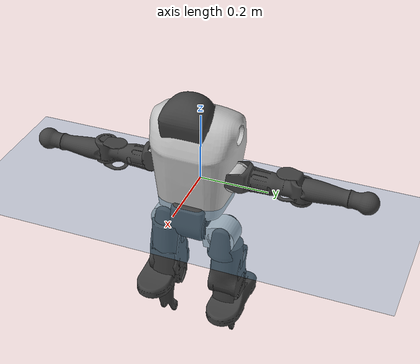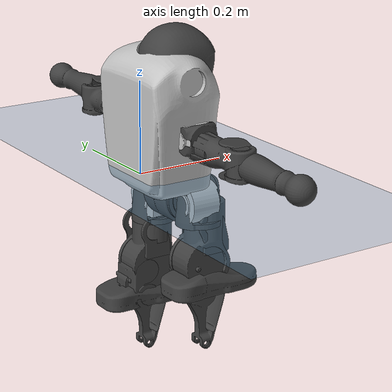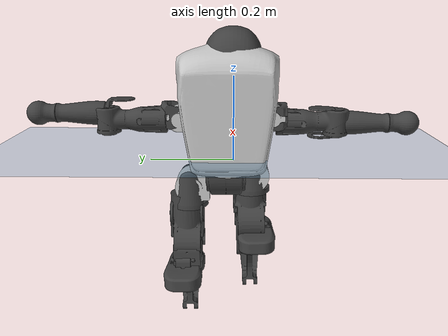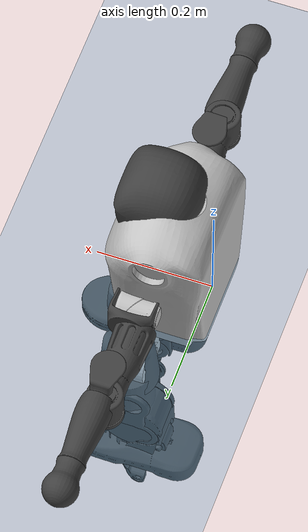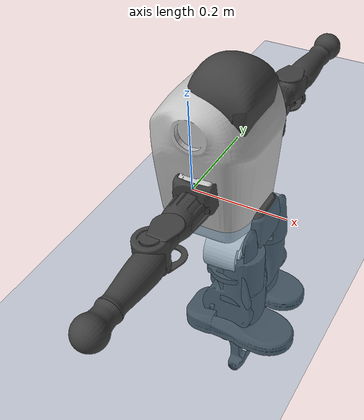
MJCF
<mujoco model="T1">
  <compiler angle="radian" assetdir="assets" balanceinertia="true" inertiafromgeom="false"/>

  <option timestep="0.005" density="1.2" viscosity="2e-05"/>

  <size nkey="1"/>

  <visual>
    <quality shadowsize="8192"/>
    <map shadowclip="0.5"/>
  </visual>

  <default>
    <default class="/">
      <joint armature="0.01" damping="0.01" frictionloss="0.1"/>
      <geom contype="0" conaffinity="0" group="1" solref="-1000 -80"/>
      <site size="0.01 0.005 0.005" group="5"/>
      <general forcelimited="true" biastype="affine" gainprm="25" biasprm="0 -25 -0.6"/>
      <default class="t1">
        <geom rgba="0.25 0.25 0.25 1"/>
        <default class="visual">
          <geom type="mesh" group="2"/>
        </default>
        <default class="collision">
          <geom group="3"/>
        </default>
        <default class="foot">
          <geom size="0.1115 0.05 0.015" type="box" condim="6" group="4" priority="1" solimp="0.015 1 0.015"/>
        </default>
        <default class="reward_collision_sphere">
          <geom group="5" rgba="1 0 0 1"/>
        </default>
      </default>
    </default>
  </default>

  <asset>
    <texture type="skybox" colorspace="auto" name="//unnamed_texture_0" builtin="gradient" rgb1="0.95 0.95 0.95" rgb2="0.95 0.95 0.95" width="100" height="600"/>
    <texture type="2d" colorspace="auto" name="texplane" builtin="checker" rgb1="0.345 0.575 0.748" rgb2="0.345 0.575 0.748" markrgb="1 1 1" width="512" height="512"/>
    <material name="MatPlane" class="/" texture="texplane" texuniform="true" texrepeat="2 2" specular="0.9"/>
    <mesh name="Trunk" class="/" file="Trunk.stl"/>
    <mesh name="H1" class="/" file="H1.stl"/>
    <mesh name="H2" class="/" file="H2.stl"/>
    <mesh name="AL1" class="/" file="AL1.stl"/>
    <mesh name="AL2" class="/" file="AL2.stl"/>
    <mesh name="AL3" class="/" file="AL3.stl"/>
    <mesh name="left_hand_link" class="/" file="left_hand_link.stl"/>
    <mesh name="AR1" class="/" file="AR1.stl"/>
    <mesh name="AR2" class="/" file="AR2.stl"/>
    <mesh name="AR3" class="/" file="AR3.stl"/>
    <mesh name="right_hand_link" class="/" file="right_hand_link.stl"/>
    <mesh name="Waist" class="/" file="Waist.stl"/>
    <mesh name="Hip_Pitch_Left" class="/" file="Hip_Pitch_Left.stl"/>
    <mesh name="Hip_Roll_Left" class="/" file="Hip_Roll_Left.stl"/>
    <mesh name="Hip_Yaw_Left" class="/" file="Hip_Yaw_Left.stl"/>
    <mesh name="Shank_Left" class="/" file="Shank_Left.stl"/>
    <mesh name="Ankle_Cross_Left" class="/" file="Ankle_Cross_Left.stl"/>
    <mesh name="left_foot_link" class="/" file="left_foot_link.stl"/>
    <mesh name="Hip_Pitch_Right" class="/" file="Hip_Pitch_Right.stl"/>
    <mesh name="Hip_Roll_Right" class="/" file="Hip_Roll_Right.stl"/>
    <mesh name="Hip_Yaw_Right" class="/" file="Hip_Yaw_Right.stl"/>
    <mesh name="Shank_Right" class="/" file="Shank_Right.stl"/>
    <mesh name="Ankle_Cross_Right" class="/" file="Ankle_Cross_Right.stl"/>
    <mesh name="right_foot_link" class="/" file="right_foot_link.stl"/>
  </asset>

  <worldbody>
    <geom name="floor" class="/" size="100 100 0.125" type="plane" group="0" material="MatPlane"/>
    <light name="toplight_shadow" class="/" pos="0 0 5" dir="0.0990148 0.0990148 -0.990148" type="directional" ambient="0.04 0.04 0.04" diffuse="0.55 0.55 0.55" specular="0.12 0.12 0.12"/>
    <light name="toplight_fill" class="/" pos="0 0 5" dir="0.0990148 0.0990148 -0.990148" type="directional" castshadow="false" ambient="0.04 0.04 0.04" diffuse="0.3 0.3 0.3" specular="0.08 0.08 0.08"/>
    <body name="trunk" childclass="t1" pos="0.0066726 0.0126322 -0.0109261" quat="0.999979 -0.00508735 -0.00379876 -0.0015449">
      <inertial pos="0.0687821 -0.00572269 0.0383232" quat="0.999923 0.00131801 -0.0123452 -0.000391099" mass="5.93601" diaginertia="0.22358 0.0146079 0.000518339"/>
      <joint name="//unnamed_joint_0" type="free" armature="0" damping="0" frictionloss="0"/>
      <geom name="//unnamed_geom_1" class="visual" rgba="0.76 0.76 0.76 1" mesh="Trunk"/>
      <geom name="//unnamed_geom_2" class="collision" size="0.0605935 0.0807914 0.121187" pos="0.0761278 0 0.0510357" type="box"/>
      <geom name="//unnamed_geom_3" class="reward_collision_sphere" size="0.0929101" pos="0.0761278 0 0.0425298"/>
      <geom name="//unnamed_geom_4" class="reward_collision_sphere" size="0.0121187" pos="0.0761278 0.06202 0"/>
      <geom name="//unnamed_geom_5" class="reward_collision_sphere" size="0.0121187" pos="0.0761278 -0.06202 0"/>
      <geom name="//unnamed_geom_6" class="reward_collision_sphere" size="0.0121187" pos="0.0761278 0.0780722 0.0765536"/>
      <geom name="//unnamed_geom_7" class="reward_collision_sphere" size="0.0121187" pos="0.0761278 -0.0780722 0.0765536"/>
      <site name="imu" pos="-0.054639 0.025455 -0.0242221" size="0.00807914"/>
      <camera name="track" pos="0 -1.45929 0" quat="0.707107 0.707107 0 0" mode="trackcom"/>
      <camera name="ego_camera" pos="0.154793 0 0.178625" quat="-0.5 -0.5 0.5 0.5"/>
      <body name="H1" pos="0.0662218 -0.0132064 0.114131" quat="1 -0.000124877 4.59057e-05 6.28633e-05">
        <inertial pos="0.0108973 -0.00803006 0.013388" quat="0.786447 0.0536434 0.0194447 0.615017" mass="0.270428" diaginertia="0.000850294 4.47643e-05 2.3409e-06"/>
        <joint name="AAHead_yaw" pos="0 0 0" axis="0.0194606 0.000893847 0.99981" stiffness="0.00191788" range="-1.42672 1.80118" armature="0.0132513" damping="0.0200922" frictionloss="0.0170957"/>
        <geom name="//unnamed_geom_8" class="visual" mesh="H1"/>
        <body name="H2" pos="0.00144728 0.000576959 0.016829" quat="1 -0.000121804 -0.000198176 0.000276368">
          <inertial pos="0.00537124 0.000541399 0.0410465" quat="0.990264 0.111589 -0.0408288 -0.0725182" mass="0.395033" diaginertia="0.00850444 0.000421188 2.29096e-05"/>
          <joint name="Head_pitch" pos="0 0 0" axis="-0.00132436 -0.99989 0.0147469" range="-1.19293 0.313357" armature="0.0143762" damping="0.000795648" frictionloss="0.100566"/>
          <geom name="//unnamed_geom_9" class="visual" mesh="H2"/>
          <geom name="//unnamed_geom_10" class="collision" size="0.0646331" pos="0.012688 0 0.0467828"/>
          <geom name="//unnamed_geom_11" class="reward_collision_sphere" size="0.0727122" pos="0.0253759 0 0.0425298"/>
        </body>
      </body>
      <body name="AL1" pos="0.0760353 0.0742301 0.097598" quat="1 0.000185416 0.000480909 0.000212938">
        <inertial pos="0.00755317 0.0317615 -0.00455267" quat="0.481968 0.442667 -0.542134 0.527109" mass="0.293684" diaginertia="0.0045175 0.000241745 3.46117e-06"/>
        <joint name="Left_Shoulder_Pitch" pos="0 0 0" axis="0.0247785 0.998985 0.0376235" stiffness="0.00292423" range="-3.31978 1.08047" armature="0.00793251" damping="0.0068249" frictionloss="0.0934402"/>
        <geom name="//unnamed_geom_12" class="visual" rgba="0.76 0.76 0.76 1" mesh="AL1"/>
        <body name="AL2" pos="0.00134408 0.0345363 0.007619" quat="1 5.4982e-05 -1.86606e-05 -0.000143062">
          <inertial pos="0.0052643 0.0364468 0.00121432" quat="0.48861 0.511411 -0.487693 0.511736" mass="0.0892048" diaginertia="0.00139658 7.21849e-05 2.71468e-06"/>
          <joint name="Left_Shoulder_Roll" pos="0 0 0" axis="-0.999883 -0.0133784 -0.00744999" stiffness="0.0128058" range="-1.42744 1.55553" armature="0.00765286" damping="0.0142528" frictionloss="0.0903365"/>
          <geom name="//unnamed_geom_13" class="visual" mesh="AL2"/>
          <body name="AL3" pos="-0.0119921 0.0442369 -0.0081677" quat="0.999985 -0.00427315 0.00349954 -0.00061961">
            <inertial pos="0.0143797 0.0609224 -0.00129596" quat="0.696282 0.717721 -0.00454805 0.00687147" mass="0.460263" diaginertia="0.0375499 0.00305863 8.36419e-06"/>
            <joint name="Left_Elbow_Pitch" pos="0 0 0" axis="0.00460246 -0.999968 -0.00654485" stiffness="0.0122151" range="-2.28238 2.2443" armature="0.011447" damping="0.00375723" frictionloss="0.0951677"/>
            <geom name="//unnamed_geom_14" class="visual" mesh="AL3"/>
            <geom name="//unnamed_geom_15" class="collision" size="0.0242374 0.0605935" pos="0 0.0364824 0" quat="0.707105 0.707108 0 0" type="cylinder"/>
            <geom name="//unnamed_geom_16" class="reward_collision_sphere" size="0.0290849"/>
            <body name="left_hand_link" pos="0.00835426 0.107077 0.0155586" quat="0.999978 0.00537255 0.00231546 -0.00323411">
              <inertial pos="-0.000211187 0.0899072 -0.00995411" quat="0.700715 0.712226 -0.0408508 0.00801269" mass="0.213863" diaginertia="0.0267079 0.00199521 4.06502e-06"/>
              <joint name="Left_Elbow_Yaw" pos="0 0 0" axis="-0.000803441 -0.0143771 0.999896" range="-2.3811 0.129074" armature="0.00900179" damping="0" frictionloss="0.0797011"/>
              <geom name="//unnamed_geom_17" class="visual" mesh="left_hand_link"/>
              <geom name="//unnamed_geom_18" class="collision" size="0.0242374 0.0706924" pos="0 0.0948541 0" quat="0.707105 0.707108 0 0" type="cylinder"/>
              <geom name="//unnamed_geom_19" class="reward_collision_sphere" size="0.0403957"/>
              <geom name="//unnamed_geom_20" class="reward_collision_sphere" size="0.028277" pos="0 0.0802612 0"/>
              <geom name="//unnamed_geom_21" class="reward_collision_sphere" size="0.028277" pos="0 0.156874 0"/>
            </body>
          </body>
        </body>
      </body>
      <body name="AR1" pos="0.0642508 -0.0630181 0.101271" quat="0.999999 0.000498192 -0.00112247 -0.000457922">
        <inertial pos="-0.000780265 -0.020399 -0.01429" quat="0.510637 0.501649 -0.503607 0.483713" mass="0.307793" diaginertia="0.00504298 0.000349038 4.47129e-06"/>
        <joint name="Right_Shoulder_Pitch" pos="0 0 0" axis="-0.0199542 -0.997634 0.0657855" range="-1.45256 3.33214" armature="0.00563158" damping="0" frictionloss="0.0347031"/>
        <geom name="//unnamed_geom_22" class="visual" rgba="0.76 0.76 0.76 1" mesh="AR1"/>
        <body name="AR2" pos="0.00119383 -0.025717 0.00073703" quat="0.99999 0.000557319 -0.00359941 -0.00262453">
          <inertial pos="0.013831 -0.0273243 0.00922403" quat="0.544691 0.479059 -0.507004 0.465577" mass="0.0645142" diaginertia="0.00106471 5.79038e-05 2.35829e-06"/>
          <joint name="Right_Shoulder_Roll" pos="0 0 0" axis="-0.99919 -0.0385747 0.0115012" stiffness="0.0272041" range="-1.73453 1.58422" armature="0.0130757" damping="0.00157312" frictionloss="0.0922716"/>
          <geom name="//unnamed_geom_23" class="visual" mesh="AR2"/>
          <body name="AR3" pos="0.00261724 -0.0315688 -0.013405" quat="0.999982 0.00550847 0.00123899 -0.00186167">
            <inertial pos="-0.015617 -0.0637935 -0.0129144" quat="0.708948 0.705257 0.000724417 0.00204866" mass="0.6058" diaginertia="0.0561202 0.00302619 1.05286e-05"/>
            <joint name="Right_Elbow_Pitch" pos="0 0 0" axis="-0.00297635 0.999995 -0.000955902" stiffness="0.0391631" range="-2.19373 2.26345" armature="0.00882599" damping="0.00807108" frictionloss="0.0171693"/>
            <geom name="//unnamed_geom_24" class="visual" mesh="AR3"/>
            <geom name="//unnamed_geom_25" class="collision" size="0.0242374 0.0605935" pos="0 -0.0364824 0" quat="0.707105 0.707108 0 0" type="cylinder"/>
            <geom name="//unnamed_geom_26" class="reward_collision_sphere" size="0.0290849"/>
            <body name="right_hand_link" pos="0.00942488 -0.108101 -0.00303374" quat="1 -4.252e-05 -6.5451e-05 -4.59624e-05">
              <inertial pos="0.00211632 -0.0850361 0.00442928" quat="0.706635 0.707577 0.000973988 0.00116861" mass="0.161338" diaginertia="0.0217282 0.00136112 2.67035e-06"/>
              <joint name="Right_Elbow_Yaw" pos="0 0 0" axis="0.00146699 0.075194 0.997168" range="0.107221 2.43509" armature="0.0114354" damping="0.00701429" frictionloss="0.0455837"/>
              <geom name="//unnamed_geom_27" class="visual" mesh="right_hand_link"/>
              <geom name="//unnamed_geom_28" class="collision" size="0.0242374 0.0706924" pos="0 -0.0948541 0" quat="0.707105 0.707108 0 0" type="cylinder"/>
              <geom name="//unnamed_geom_29" class="reward_collision_sphere" size="0.0403957"/>
              <geom name="//unnamed_geom_30" class="reward_collision_sphere" size="0.028277" pos="0 -0.0802612 0"/>
              <geom name="//unnamed_geom_31" class="reward_collision_sphere" size="0.028277" pos="0 -0.156874 0"/>
            </body>
          </body>
        </body>
      </body>
      <body name="Waist" pos="0.0950696 0.00728842 -0.0526838" quat="0.999974 -0.00344971 0.00453575 0.00442163">
        <inertial pos="0.0166717 -0.010954 0.0137099" quat="0.98767 0.0271794 -0.144295 -0.0542941" mass="1.6926" diaginertia="0.018874 0.00124667 7.42574e-05"/>
        <joint name="Waist" pos="0 0 0" axis="0.0244155 0.0406564 0.998875" range="-1.55247 1.47848" armature="0.0081951" damping="0.00347715" frictionloss="0.0828082"/>
        <geom name="//unnamed_geom_32" class="visual" mesh="Waist"/>
        <body name="Hip_Pitch_Left" pos="0.000724436 0.0884621 -0.0125207" quat="0.999997 0.00052243 -0.00195256 -0.000986306">
          <inertial pos="-0.012958 -0.00621723 -0.00733103" quat="0.98369 0.17589 -0.0226918 0.0300363" mass="0.467154" diaginertia="0.00614481 0.000229585 1.64836e-05"/>
          <joint name="Left_Hip_Pitch" pos="0 0 0" axis="-0.0221081 0.998389 0.0522561" range="-1.93735 1.64732" armature="0.00459117" damping="0" frictionloss="0.0767407"/>
          <geom name="//unnamed_geom_33" class="visual" rgba="0.76 0.76 0.76 1" mesh="Hip_Pitch_Left"/>
          <body name="Hip_Roll_Left" pos="0.00462761 0.00758543 -0.000274435" quat="1 0.000309778 2.27009e-05 0.00023638">
            <inertial pos="0.00222846 0.0150943 -0.0158129" quat="0.706759 -0.00231591 -0.00522416 0.707432" mass="0.227738" diaginertia="0.00755071 0.000420577 6.54315e-06"/>
            <joint name="Left_Hip_Roll" pos="0 0 0" axis="-0.999279 -0.0349623 0.0147741" range="-1.49229 0.0358471" armature="0.00637597" damping="0.0798849" frictionloss="0.0352968"/>
            <geom name="//unnamed_geom_34" class="visual" mesh="Hip_Roll_Left"/>
            <geom name="//unnamed_geom_35" class="reward_collision_sphere" size="0.0444353"/>
            <body name="Hip_Yaw_Left" pos="-0.00311934 0.00787832 -0.0417935" quat="0.99999 0.000764964 0.00423711 -0.00142609">
              <inertial pos="-0.0128988 -0.00512357 -0.0273897" quat="0.680023 -0.0383721 -0.0495571 0.730506" mass="1.08228" diaginertia="0.0945409 0.00614948 4.19611e-05"/>
              <joint name="Left_Hip_Yaw" pos="0 0 0" axis="-0.00166636 0.00617603 -0.99998" stiffness="0.065503" range="-0.702269 1.05867" armature="0.00806996" damping="0.00757532" frictionloss="0.0835124"/>
              <geom name="//unnamed_geom_36" class="visual" mesh="Hip_Yaw_Left"/>
              <geom name="//unnamed_geom_37" class="collision" size="0.0403957 0.0646331" type="cylinder"/>
              <body name="Shank_Left" pos="-0.0192833 0.000510221 -0.0516332" quat="1 -0.000128295 -0.000143795 0.000102428">
                <inertial pos="0.00365362 0.000645433 -0.0552282" quat="0.995035 -0.0269633 -0.00736944 0.095517" mass="0.865934" diaginertia="0.0946498 0.00804394 2.8109e-05"/>
                <joint name="Left_Knee_Pitch" pos="0 0 0" axis="-0.0211009 0.999356 -0.0290268" range="-0.0167494 2.53341" armature="0.0034109" damping="0.0603056" frictionloss="0.0851423"/>
                <geom name="//unnamed_geom_38" class="visual" mesh="Shank_Left"/>
                <geom name="//unnamed_geom_39" class="collision" size="0.0403957 0.0605935" pos="0 0 -0.0510357" type="cylinder"/>
                <geom name="//unnamed_geom_40" class="reward_collision_sphere" size="0.0525144"/>
                <body name="Ankle_Cross_Left" pos="-0.011569 2.29783e-06 -0.135067" quat="0.999991 -0.0008871 0.00400635 -0.0012397">
                  <inertial pos="0.0110928 -0.00343341 -0.012116" quat="0.444016 0.551296 0.548575 0.444957" mass="0.0375207" diaginertia="0.000106727 5.35614e-06 1.45509e-07"/>
                  <joint name="Left_Ankle_Pitch" pos="0 0 0" axis="0.00101969 0.999996 0.00264397" stiffness="0.0590918" range="-0.887928 0.353608" armature="0.00159088" damping="0" frictionloss="0.0765999"/>
                  <geom name="//unnamed_geom_41" class="visual" mesh="Ankle_Cross_Left"/>
                  <body name="left_foot_link" pos="0.00578599 0.0102868 -0.0155381" quat="0.999968 -0.00312936 0.00114522 -0.00721502">
                    <inertial pos="0.0109108 0.00851926 -0.00110528" quat="-0.0458396 0.588856 0.030619 0.806356" mass="0.292164" diaginertia="0.00795227 0.000466509 2.30994e-05"/>
                    <joint name="Left_Ankle_Roll" pos="0 0 0" axis="-0.996988 0.0743478 0.0220613" range="-0.554429 0.244429" armature="0.00869232" damping="0.0614402" frictionloss="0.0985363"/>
                    <geom name="//unnamed_geom_42" class="visual" mesh="left_foot_link"/>
                    <geom name="left_foot" class="foot" size="0.0617626 0.0569918 0.0121787" pos="0.012688 0 -0.00637947"/>
                    <geom name="//unnamed_geom_44" class="reward_collision_sphere" size="0.0420115" pos="0.012688 0 -0.00637947"/>
                    <geom name="//unnamed_geom_45" class="reward_collision_sphere" size="0.0242374" pos="0.120536 -0.0167819 -0.00637947"/>
                    <geom name="//unnamed_geom_46" class="reward_collision_sphere" size="0.0242374" pos="-0.0888157 -0.0167819 -0.00637947"/>
                    <site name="left_foot" class="foot" pos="0.012688 0 -0.00637947" size="0.00807914"/>
                  </body>
                </body>
              </body>
            </body>
          </body>
        </body>
        <body name="Hip_Pitch_Right" pos="0.0041666 -0.0684406 0.0152671" quat="0.999999 -0.000474864 0.000311913 0.000871146">
          <inertial pos="0.0150325 0.0185317 -0.00173064" quat="0.976374 -0.215985 -0.00628729 0.0022571" mass="0.531517" diaginertia="0.00505292 0.000264128 1.74649e-05"/>
          <joint name="Right_Hip_Pitch" pos="0 0 0" axis="0.00880158 -0.999735 0.0212766" stiffness="0.0310351" range="-1.47955 1.99576" armature="0.0106745" damping="0.0744488" frictionloss="0.0533226"/>
          <geom name="//unnamed_geom_47" class="visual" rgba="0.76 0.76 0.76 1" mesh="Hip_Pitch_Right"/>
          <body name="Hip_Roll_Right" pos="0.00974968 0.000902718 0.00667786" quat="0.999989 -0.00309851 0.00269218 0.0020573">
            <inertial pos="0.0118516 -0.00614593 -0.0332283" quat="0.721613 0.0238567 0.044322 0.690464" mass="0.19211" diaginertia="0.00487023 0.000346794 7.48898e-06"/>
            <joint name="Right_Hip_Roll" pos="0 0 0" axis="-0.99972 0.0136524 -0.0193303" stiffness="0.010153" range="-0.136266 1.54221" armature="0.00896962" damping="0" frictionloss="0.0392988"/>
            <geom name="//unnamed_geom_48" class="visual" mesh="Hip_Roll_Right"/>
            <geom name="//unnamed_geom_49" class="reward_collision_sphere" size="0.0444353"/>
            <body name="Hip_Yaw_Right" pos="0.0149582 0.0035276 -0.0286778" quat="1 -8.58249e-05 -0.000234017 -3.28405e-05">
              <inertial pos="-0.00622028 0.0045342 -0.0472888" quat="0.715707 -0.0320496 -0.0339624 0.696838" mass="1.18824" diaginertia="0.0706624 0.00569142 2.9878e-05"/>
              <joint name="Right_Hip_Yaw" pos="0 0 0" axis="4.97176e-05 -0.00980911 -0.999952" stiffness="0.0219127" range="-1.01382 0.978167" armature="0.0068787" damping="0" frictionloss="0.105015"/>
              <geom name="//unnamed_geom_50" class="visual" mesh="Hip_Yaw_Right"/>
              <geom name="//unnamed_geom_51" class="collision" size="0.0403957 0.0646331" type="cylinder"/>
              <body name="Shank_Right" pos="-0.00521085 0.00290664 -0.0464436" quat="0.999995 0.000223128 -3.17666e-05 -0.00307458">
                <inertial pos="-0.00764906 0.0120454 -0.0533207" quat="0.996972 0.0413951 -0.0586244 -0.0299462" mass="0.802204" diaginertia="0.126037 0.00732347 3.21672e-05"/>
                <joint name="Right_Knee_Pitch" pos="0 0 0" axis="0.00146316 -0.999996 -0.00246371" range="-2.07032 -0.0133684" armature="0.00999538" damping="0.00393691" frictionloss="0.0921974"/>
                <geom name="//unnamed_geom_52" class="visual" mesh="Shank_Right"/>
                <geom name="//unnamed_geom_53" class="collision" size="0.0403957 0.0605935" pos="0 0 -0.0510357" type="cylinder"/>
                <geom name="//unnamed_geom_54" class="reward_collision_sphere" size="0.0525144"/>
                <body name="Ankle_Cross_Right" pos="0.00419244 -0.00428734 -0.112381" quat="1 -0.000382163 -5.28957e-05 0.000270885">
                  <inertial pos="-0.00540359 -0.00825474 -0.00450864" quat="0.442863 0.552399 0.551983 0.440502" mass="0.0425559" diaginertia="7.86198e-05 5.88875e-06 1.30153e-07"/>
                  <joint name="Right_Ankle_Pitch" pos="0 0 0" axis="-0.014174 -0.997864 0.0637649" stiffness="0.0580033" range="-0.538721 1.09197" armature="0.00787471" damping="0" frictionloss="0.0837822"/>
                  <geom name="//unnamed_geom_55" class="visual" mesh="Ankle_Cross_Right"/>
                  <body name="right_foot_link" pos="-0.00105795 -0.0124434 -0.0100265" quat="1 -2.04429e-05 -8.24072e-05 -2.56986e-05">
                    <inertial pos="-0.000385655 -0.012459 0.0114111" quat="0.0390988 0.644954 0.0365599 0.762344" mass="0.473727" diaginertia="0.0103271 0.00059695 4.31677e-05"/>
                    <joint name="Right_Ankle_Roll" pos="0 0 0" axis="-0.999518 -0.0115724 0.0287936" range="-0.2038 0.158271" armature="0.0142015" damping="0.08303" frictionloss="0.0381641"/>
                    <geom name="//unnamed_geom_56" class="visual" mesh="right_foot_link"/>
                    <geom name="right_foot" class="foot" size="0.0745432 0.0585749 0.00640347" pos="0.012688 0 -0.00637947"/>
                    <geom name="//unnamed_geom_58" class="reward_collision_sphere" size="0.0323165"/>
                    <geom name="//unnamed_geom_59" class="reward_collision_sphere" size="0.0242374" pos="0.012688 0 -0.00637947"/>
                    <geom name="//unnamed_geom_60" class="reward_collision_sphere" size="0.0242374" pos="0.120536 0.0167819 -0.00637947"/>
                    <geom name="//unnamed_geom_61" class="reward_collision_sphere" size="0.0242374" pos="-0.0888157 0.0167819 -0.00637947"/>
                    <site name="right_foot" class="foot" pos="0.012688 0 -0.00637947" size="0.00807914"/>
                  </body>
                </body>
              </body>
            </body>
          </body>
        </body>
      </body>
    </body>
  </worldbody>

  <contact>
    <pair class="/" geom1="floor" geom2="left_foot" name="//unnamed_contact_0"/>
    <pair class="/" geom1="floor" geom2="right_foot" name="//unnamed_contact_1"/>
  </contact>

  <actuator>
    <general name="AAHead_yaw" class="/" joint="AAHead_yaw" forcerange="-5.52293 5.52293" gainprm="24.0403" biasprm="0 -24.0403 -0.38154"/>
    <general name="Head_pitch" class="/" joint="Head_pitch" forcerange="-5.56737 5.56737" gainprm="24.0403" biasprm="0 -24.0403 -0.38154"/>
    <general name="Left_Shoulder_Pitch" class="/" joint="Left_Shoulder_Pitch" forcerange="-23.1025 23.1025" gainprm="24.0403" biasprm="0 -24.0403 -0.38154"/>
    <general name="Left_Shoulder_Roll" class="/" joint="Left_Shoulder_Roll" forcerange="-21.6142 21.6142" gainprm="24.0403" biasprm="0 -24.0403 -0.38154"/>
    <general name="Left_Elbow_Pitch" class="/" joint="Left_Elbow_Pitch" forcerange="-9.11978 9.11978" gainprm="24.0403" biasprm="0 -24.0403 -0.38154"/>
    <general name="Left_Elbow_Yaw" class="/" joint="Left_Elbow_Yaw" forcerange="-14.4828 14.4828" gainprm="24.0403" biasprm="0 -24.0403 -0.38154"/>
    <general name="Right_Shoulder_Pitch" class="/" joint="Right_Shoulder_Pitch" forcerange="-16.6727 16.6727" gainprm="24.0403" biasprm="0 -24.0403 -0.38154"/>
    <general name="Right_Shoulder_Roll" class="/" joint="Right_Shoulder_Roll" forcerange="-8.78319 8.78319" gainprm="24.0403" biasprm="0 -24.0403 -0.38154"/>
    <general name="Right_Elbow_Pitch" class="/" joint="Right_Elbow_Pitch" forcerange="-12.6038 12.6038" gainprm="24.0403" biasprm="0 -24.0403 -0.38154"/>
    <general name="Right_Elbow_Yaw" class="/" joint="Right_Elbow_Yaw" forcerange="-17.0941 17.0941" gainprm="24.0403" biasprm="0 -24.0403 -0.38154"/>
    <general name="Waist" class="/" joint="Waist" forcerange="-35.2036 35.2036" gainprm="24.0403" biasprm="0 -24.0403 -0.38154"/>
    <general name="Left_Hip_Pitch" class="/" joint="Left_Hip_Pitch" forcerange="-33.0658 33.0658" gainprm="24.0403" biasprm="0 -24.0403 -0.38154"/>
    <general name="Left_Hip_Roll" class="/" joint="Left_Hip_Roll" forcerange="-18.3476 18.3476" gainprm="24.0403" biasprm="0 -24.0403 -0.38154"/>
    <general name="Left_Hip_Yaw" class="/" joint="Left_Hip_Yaw" forcerange="-32.3246 32.3246" gainprm="24.0403" biasprm="0 -24.0403 -0.38154"/>
    <general name="Left_Knee_Pitch" class="/" joint="Left_Knee_Pitch" forcerange="-47.797 47.797" gainprm="24.0403" biasprm="0 -24.0403 -0.38154"/>
    <general name="Left_Ankle_Pitch" class="/" joint="Left_Ankle_Pitch" forcerange="-16.3094 16.3094" gainprm="24.0403" biasprm="0 -24.0403 -0.38154"/>
    <general name="Left_Ankle_Roll" class="/" joint="Left_Ankle_Roll" forcerange="-9.48481 9.48481" gainprm="24.0403" biasprm="0 -24.0403 -0.38154"/>
    <general name="Right_Hip_Pitch" class="/" joint="Right_Hip_Pitch" forcerange="-18.4804 18.4804" gainprm="24.0403" biasprm="0 -24.0403 -0.38154"/>
    <general name="Right_Hip_Roll" class="/" joint="Right_Hip_Roll" forcerange="-10.3312 10.3312" gainprm="24.0403" biasprm="0 -24.0403 -0.38154"/>
    <general name="Right_Hip_Yaw" class="/" joint="Right_Hip_Yaw" forcerange="-23.8116 23.8116" gainprm="24.0403" biasprm="0 -24.0403 -0.38154"/>
    <general name="Right_Knee_Pitch" class="/" joint="Right_Knee_Pitch" forcerange="-33.2314 33.2314" gainprm="24.0403" biasprm="0 -24.0403 -0.38154"/>
    <general name="Right_Ankle_Pitch" class="/" joint="Right_Ankle_Pitch" forcerange="-25.27 25.27" gainprm="24.0403" biasprm="0 -24.0403 -0.38154"/>
    <general name="Right_Ankle_Roll" class="/" joint="Right_Ankle_Roll" forcerange="-6.79145 6.79145" gainprm="24.0403" biasprm="0 -24.0403 -0.38154"/>
  </actuator>

  <sensor>
    <gyro site="imu" name="imu_angular_velocity"/>
    <velocimeter site="imu" name="imu_linear_velocity"/>
    <framelinvel objtype="site" objname="left_foot" name="left_foot_global_linear_velocity"/>
    <framelinvel objtype="site" objname="right_foot" name="right_foot_global_linear_velocity"/>
  </sensor>

  <keyframe>
    <key name="home" qpos="0 0 0.6385 1 0 0 0 0 0 0 1.4 0 -0.4 0 -1.4 0 0.4 0 -0.4 0 0 0.8 -0.4 0 0.4 0 0 -0.8 0.4 0"/>
  </keyframe>
</mujoco>
